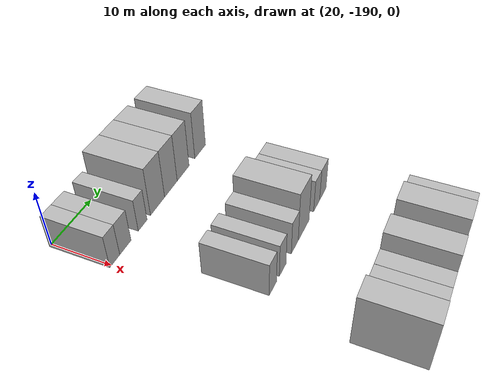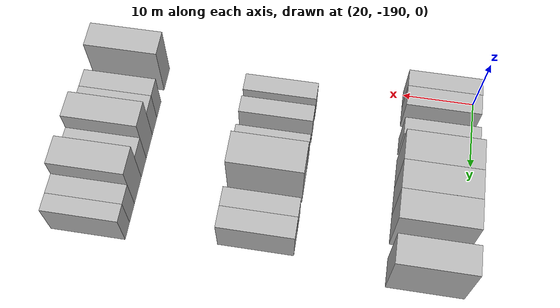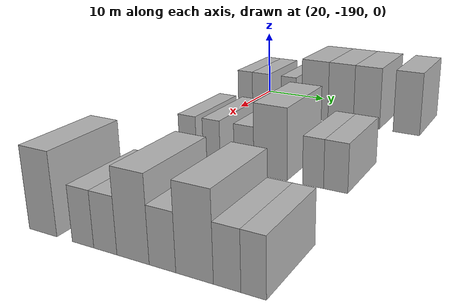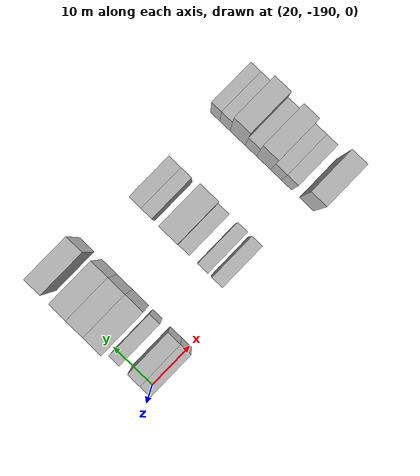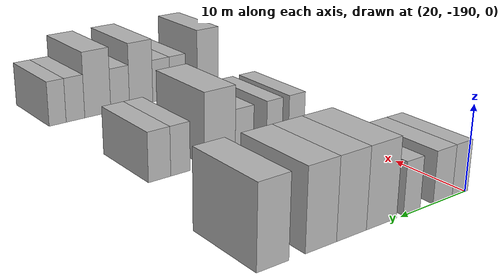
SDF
<sdf version="1.6">
 <world name="default">
  <model name="building_16">
   <static>1</static>
   <pose>25.0000 -189.1389 0 0.000000 0.000000 0.000000</pose>
   <link name="link">
    <pose>0 0 3.00 0 0 0</pose>
    <collision name="collision"><geometry><box><size>10.0000 2.5451 6.0000</size></box></geometry></collision>
    <visual name="visual">
     <cast_shadows>0</cast_shadows>
     <geometry><box><size>10.0000 2.5451 6.0000</size></box></geometry>
     <material>
      <script>
       <uri>model://HANNAS_wall/materials/scripts</uri>
       <uri>model://HANNAS_wall/materials/textures</uri>
       <name>vrc/HANNAS_wall</name>
      </script>
     </material>
    </visual>
   </link>
  </model>
  <model name="building_17">
   <static>1</static>
   <pose>25.0000 -186.3680 0 0.000000 0.000000 0.000000</pose>
   <link name="link">
    <pose>0 0 3.00 0 0 0</pose>
    <collision name="collision"><geometry><box><size>10.0000 2.9968 6.0000</size></box></geometry></collision>
    <visual name="visual">
     <cast_shadows>0</cast_shadows>
     <geometry><box><size>10.0000 2.9968 6.0000</size></box></geometry>
     <material>
      <script>
       <uri>model://HANNAS_wall/materials/scripts</uri>
       <uri>model://HANNAS_wall/materials/textures</uri>
       <name>vrc/HANNAS_wall</name>
      </script>
     </material>
    </visual>
   </link>
  </model>
  <model name="building_18">
   <static>1</static>
   <pose>25.0000 -181.6189 0 0.000000 0.000000 0.000000</pose>
   <link name="link">
    <pose>0 0 3.00 0 0 0</pose>
    <collision name="collision"><geometry><box><size>10.0000 2.5014 6.0000</size></box></geometry></collision>
    <visual name="visual">
     <cast_shadows>0</cast_shadows>
     <geometry><box><size>10.0000 2.5014 6.0000</size></box></geometry>
     <material>
      <script>
       <uri>model://HANNAS_wall/materials/scripts</uri>
       <uri>model://HANNAS_wall/materials/textures</uri>
       <name>vrc/HANNAS_wall</name>
      </script>
     </material>
    </visual>
   </link>
  </model>
  <model name="building_19">
   <static>1</static>
   <pose>25.0000 -177.2330 0 0.000000 0.000000 0.000000</pose>
   <link name="link">
    <pose>0 0 4.50 0 0 0</pose>
    <collision name="collision"><geometry><box><size>10.0000 4.2704 9.0000</size></box></geometry></collision>
    <visual name="visual">
     <cast_shadows>0</cast_shadows>
     <geometry><box><size>10.0000 4.2704 9.0000</size></box></geometry>
     <material>
      <script>
       <uri>model://HANNAS_wall/materials/scripts</uri>
       <uri>model://HANNAS_wall/materials/textures</uri>
       <name>vrc/HANNAS_wall</name>
      </script>
     </material>
    </visual>
   </link>
  </model>
  <model name="building_20">
   <static>1</static>
   <pose>25.0000 -173.0918 0 0.000000 0.000000 0.000000</pose>
   <link name="link">
    <pose>0 0 4.50 0 0 0</pose>
    <collision name="collision"><geometry><box><size>10.0000 4.0120 9.0000</size></box></geometry></collision>
    <visual name="visual">
     <cast_shadows>0</cast_shadows>
     <geometry><box><size>10.0000 4.0120 9.0000</size></box></geometry>
     <material>
      <script>
       <uri>model://HANNAS_wall/materials/scripts</uri>
       <uri>model://HANNAS_wall/materials/textures</uri>
       <name>vrc/HANNAS_wall</name>
      </script>
     </material>
    </visual>
   </link>
  </model>
  <model name="building_21">
   <static>1</static>
   <pose>25.0000 -169.0898 0 0.000000 0.000000 0.000000</pose>
   <link name="link">
    <pose>0 0 4.50 0 0 0</pose>
    <collision name="collision"><geometry><box><size>10.0000 3.9919 9.0000</size></box></geometry></collision>
    <visual name="visual">
     <cast_shadows>0</cast_shadows>
     <geometry><box><size>10.0000 3.9919 9.0000</size></box></geometry>
     <material>
      <script>
       <uri>model://HANNAS_wall/materials/scripts</uri>
       <uri>model://HANNAS_wall/materials/textures</uri>
       <name>vrc/HANNAS_wall</name>
      </script>
     </material>
    </visual>
   </link>
  </model>
  <model name="building_22">
   <static>1</static>
   <pose>25.0000 -163.1748 0 0.000000 0.000000 0.000000</pose>
   <link name="link">
    <pose>0 0 4.50 0 0 0</pose>
    <collision name="collision"><geometry><box><size>10.0000 3.8382 9.0000</size></box></geometry></collision>
    <visual name="visual">
     <cast_shadows>0</cast_shadows>
     <geometry><box><size>10.0000 3.8382 9.0000</size></box></geometry>
     <material>
      <script>
       <uri>model://HANNAS_wall/materials/scripts</uri>
       <uri>model://HANNAS_wall/materials/textures</uri>
       <name>vrc/HANNAS_wall</name>
      </script>
     </material>
    </visual>
   </link>
  </model>
  <model name="building_130">
   <static>1</static>
   <pose>47.0000 -185.0377 0 0.000000 0.000000 0.000000</pose>
   <link name="link">
    <pose>0 0 3.00 0 0 0</pose>
    <collision name="collision"><geometry><box><size>10.0000 2.5457 6.0000</size></box></geometry></collision>
    <visual name="visual">
     <cast_shadows>0</cast_shadows>
     <geometry><box><size>10.0000 2.5457 6.0000</size></box></geometry>
     <material>
      <script>
       <uri>model://HANNAS_wall/materials/scripts</uri>
       <uri>model://HANNAS_wall/materials/textures</uri>
       <name>vrc/HANNAS_wall</name>
      </script>
     </material>
    </visual>
   </link>
  </model>
  <model name="building_131">
   <static>1</static>
   <pose>47.0000 -181.5389 0 0.000000 0.000000 0.000000</pose>
   <link name="link">
    <pose>0 0 3.00 0 0 0</pose>
    <collision name="collision"><geometry><box><size>10.0000 2.4518 6.0000</size></box></geometry></collision>
    <visual name="visual">
     <cast_shadows>0</cast_shadows>
     <geometry><box><size>10.0000 2.4518 6.0000</size></box></geometry>
     <material>
      <script>
       <uri>model://HANNAS_wall/materials/scripts</uri>
       <uri>model://HANNAS_wall/materials/textures</uri>
       <name>vrc/HANNAS_wall</name>
      </script>
     </material>
    </visual>
   </link>
  </model>
  <model name="building_132">
   <static>1</static>
   <pose>47.0000 -176.9565 0 0.000000 0.000000 0.000000</pose>
   <link name="link">
    <pose>0 0 3.00 0 0 0</pose>
    <collision name="collision"><geometry><box><size>10.0000 2.7130 6.0000</size></box></geometry></collision>
    <visual name="visual">
     <cast_shadows>0</cast_shadows>
     <geometry><box><size>10.0000 2.7130 6.0000</size></box></geometry>
     <material>
      <script>
       <uri>model://HANNAS_wall/materials/scripts</uri>
       <uri>model://HANNAS_wall/materials/textures</uri>
       <name>vrc/HANNAS_wall</name>
      </script>
     </material>
    </visual>
   </link>
  </model>
  <model name="building_133">
   <static>1</static>
   <pose>47.0000 -173.3848 0 0.000000 0.000000 0.000000</pose>
   <link name="link">
    <pose>0 0 4.50 0 0 0</pose>
    <collision name="collision"><geometry><box><size>10.0000 4.4305 9.0000</size></box></geometry></collision>
    <visual name="visual">
     <cast_shadows>0</cast_shadows>
     <geometry><box><size>10.0000 4.4305 9.0000</size></box></geometry>
     <material>
      <script>
       <uri>model://HANNAS_wall/materials/scripts</uri>
       <uri>model://HANNAS_wall/materials/textures</uri>
       <name>vrc/HANNAS_wall</name>
      </script>
     </material>
    </visual>
   </link>
  </model>
  <model name="building_134">
   <static>1</static>
   <pose>47.0000 -167.8490 0 0.000000 0.000000 0.000000</pose>
   <link name="link">
    <pose>0 0 3.00 0 0 0</pose>
    <collision name="collision"><geometry><box><size>10.0000 2.6410 6.0000</size></box></geometry></collision>
    <visual name="visual">
     <cast_shadows>0</cast_shadows>
     <geometry><box><size>10.0000 2.6410 6.0000</size></box></geometry>
     <material>
      <script>
       <uri>model://HANNAS_wall/materials/scripts</uri>
       <uri>model://HANNAS_wall/materials/textures</uri>
       <name>vrc/HANNAS_wall</name>
      </script>
     </material>
    </visual>
   </link>
  </model>
  <model name="building_135">
   <static>1</static>
   <pose>47.0000 -165.0572 0 0.000000 0.000000 0.000000</pose>
   <link name="link">
    <pose>0 0 3.00 0 0 0</pose>
    <collision name="collision"><geometry><box><size>10.0000 2.9426 6.0000</size></box></geometry></collision>
    <visual name="visual">
     <cast_shadows>0</cast_shadows>
     <geometry><box><size>10.0000 2.9426 6.0000</size></box></geometry>
     <material>
      <script>
       <uri>model://HANNAS_wall/materials/scripts</uri>
       <uri>model://HANNAS_wall/materials/textures</uri>
       <name>vrc/HANNAS_wall</name>
      </script>
     </material>
    </visual>
   </link>
  </model>
  <model name="building_240">
   <static>1</static>
   <pose>69.0000 -187.3633 0 0.000000 0.000000 0.000000</pose>
   <link name="link">
    <pose>0 0 4.50 0 0 0</pose>
    <collision name="collision"><geometry><box><size>10.0000 3.6721 9.0000</size></box></geometry></collision>
    <visual name="visual">
     <cast_shadows>0</cast_shadows>
     <geometry><box><size>10.0000 3.6721 9.0000</size></box></geometry>
     <material>
      <script>
       <uri>model://HANNAS_wall/materials/scripts</uri>
       <uri>model://HANNAS_wall/materials/textures</uri>
       <name>vrc/HANNAS_wall</name>
      </script>
     </material>
    </visual>
   </link>
  </model>
  <model name="building_241">
   <static>1</static>
   <pose>69.0000 -182.1819 0 0.000000 0.000000 0.000000</pose>
   <link name="link">
    <pose>0 0 3.00 0 0 0</pose>
    <collision name="collision"><geometry><box><size>10.0000 2.6907 6.0000</size></box></geometry></collision>
    <visual name="visual">
     <cast_shadows>0</cast_shadows>
     <geometry><box><size>10.0000 2.6907 6.0000</size></box></geometry>
     <material>
      <script>
       <uri>model://HANNAS_wall/materials/scripts</uri>
       <uri>model://HANNAS_wall/materials/textures</uri>
       <name>vrc/HANNAS_wall</name>
      </script>
     </material>
    </visual>
   </link>
  </model>
  <model name="building_242">
   <static>1</static>
   <pose>69.0000 -179.4400 0 0.000000 0.000000 0.000000</pose>
   <link name="link">
    <pose>0 0 3.00 0 0 0</pose>
    <collision name="collision"><geometry><box><size>10.0000 2.7930 6.0000</size></box></geometry></collision>
    <visual name="visual">
     <cast_shadows>0</cast_shadows>
     <geometry><box><size>10.0000 2.7930 6.0000</size></box></geometry>
     <material>
      <script>
       <uri>model://HANNAS_wall/materials/scripts</uri>
       <uri>model://HANNAS_wall/materials/textures</uri>
       <name>vrc/HANNAS_wall</name>
      </script>
     </material>
    </visual>
   </link>
  </model>
  <model name="building_243">
   <static>1</static>
   <pose>69.0000 -176.1895 0 0.000000 0.000000 0.000000</pose>
   <link name="link">
    <pose>0 0 4.50 0 0 0</pose>
    <collision name="collision"><geometry><box><size>10.0000 3.7081 9.0000</size></box></geometry></collision>
    <visual name="visual">
     <cast_shadows>0</cast_shadows>
     <geometry><box><size>10.0000 3.7081 9.0000</size></box></geometry>
     <material>
      <script>
       <uri>model://HANNAS_wall/materials/scripts</uri>
       <uri>model://HANNAS_wall/materials/textures</uri>
       <name>vrc/HANNAS_wall</name>
      </script>
     </material>
    </visual>
   </link>
  </model>
  <model name="building_244">
   <static>1</static>
   <pose>69.0000 -172.8770 0 0.000000 0.000000 0.000000</pose>
   <link name="link">
    <pose>0 0 3.00 0 0 0</pose>
    <collision name="collision"><geometry><box><size>10.0000 2.9168 6.0000</size></box></geometry></collision>
    <visual name="visual">
     <cast_shadows>0</cast_shadows>
     <geometry><box><size>10.0000 2.9168 6.0000</size></box></geometry>
     <material>
      <script>
       <uri>model://HANNAS_wall/materials/scripts</uri>
       <uri>model://HANNAS_wall/materials/textures</uri>
       <name>vrc/HANNAS_wall</name>
      </script>
     </material>
    </visual>
   </link>
  </model>
  <model name="building_245">
   <static>1</static>
   <pose>69.0000 -169.4599 0 0.000000 0.000000 0.000000</pose>
   <link name="link">
    <pose>0 0 4.50 0 0 0</pose>
    <collision name="collision"><geometry><box><size>10.0000 3.9175 9.0000</size></box></geometry></collision>
    <visual name="visual">
     <cast_shadows>0</cast_shadows>
     <geometry><box><size>10.0000 3.9175 9.0000</size></box></geometry>
     <material>
      <script>
       <uri>model://HANNAS_wall/materials/scripts</uri>
       <uri>model://HANNAS_wall/materials/textures</uri>
       <name>vrc/HANNAS_wall</name>
      </script>
     </material>
    </visual>
   </link>
  </model>
  <model name="building_246">
   <static>1</static>
   <pose>69.0000 -166.1444 0 0.000000 0.000000 0.000000</pose>
   <link name="link">
    <pose>0 0 3.00 0 0 0</pose>
    <collision name="collision"><geometry><box><size>10.0000 2.7136 6.0000</size></box></geometry></collision>
    <visual name="visual">
     <cast_shadows>0</cast_shadows>
     <geometry><box><size>10.0000 2.7136 6.0000</size></box></geometry>
     <material>
      <script>
       <uri>model://HANNAS_wall/materials/scripts</uri>
       <uri>model://HANNAS_wall/materials/textures</uri>
       <name>vrc/HANNAS_wall</name>
      </script>
     </material>
    </visual>
   </link>
  </model>
  <model name="building_247">
   <static>1</static>
   <pose>69.0000 -163.5739 0 0.000000 0.000000 0.000000</pose>
   <link name="link">
    <pose>0 0 3.00 0 0 0</pose>
    <collision name="collision"><geometry><box><size>10.0000 2.4272 6.0000</size></box></geometry></collision>
    <visual name="visual">
     <cast_shadows>0</cast_shadows>
     <geometry><box><size>10.0000 2.4272 6.0000</size></box></geometry>
     <material>
      <script>
       <uri>model://HANNAS_wall/materials/scripts</uri>
       <uri>model://HANNAS_wall/materials/textures</uri>
       <name>vrc/HANNAS_wall</name>
      </script>
     </material>
    </visual>
   </link>
  </model>
 </world>
</sdf>
